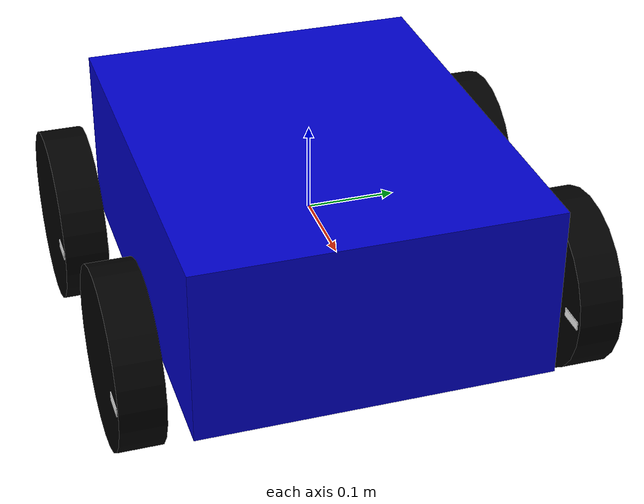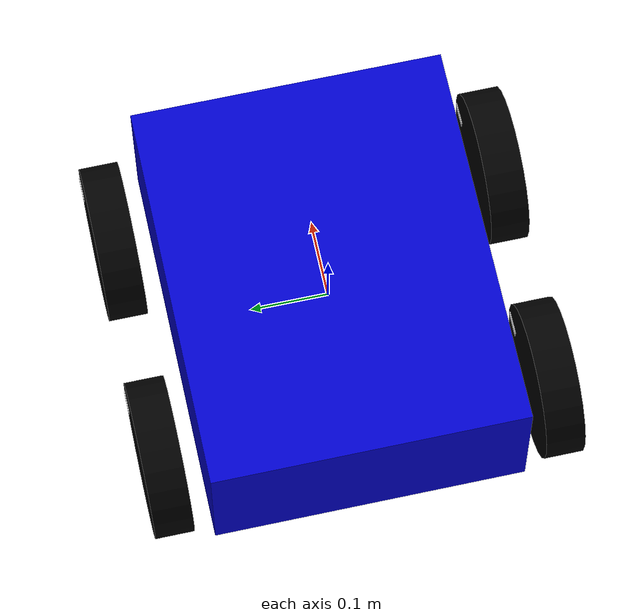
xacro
<?xml version="1.0"?>
<robot name="gyubot" xmlns:xacro="http://www.ros.org/wiki/xacro">
    <!-- 1. 상수 정의 (Properties) -->
    <!-- 치수를 변수로 관리하면 나중에 로봇 크기를 바꿀 때 매우 편리함-->
    <xacro:property name="base_width" value="0.4" />
    <xacro:property name="base_length" value="0.5" />
    <xacro:property name="base_height" value="0.2" />

    <xacro:property name="wheel_radius" value="0.10" />
    <xacro:property name="wheel_width" value="0.05" />
    <xacro:property name="wheel_ygap" value="0.025" /> <!-- 본체와 바퀴 사이의 유격-->

    <!-- 바퀴 중심 위치(Offset) 계산 -->
    <xacro:property name="wheel_xoff" value="0.15" />
    <xacro:property name="wheel_yoff" value="${base_width/2 + wheel_width/2 + wheel_ygap}"/>
    <xacro:property name="wheel_zoff" value="0.05" />

    <!-- 관성(Inertia) 계산 매크로 추가 (Gazebo 시뮬레이션용 필수) -->
    <xacro:macro name="box_inertia" params="m w h d">
        <inertial>
            <origin xyz="0 0 0" rpy="${pi/2} 0 ${pi/2}"/>
            <mass value="${m}"/>
            <inertia ixx="${(m/12) * (h*h + d*d)}" ixy="0.0" ixz="0.0" iyy="${(m/12) * (w*w + d*d)}" iyz="0.0" izz="${(m/12) * (w*w + h*h)}"/>
        </inertial>
    </xacro:macro>

    <xacro:macro name="cylinder_inertia" params="m r h">
        <inertial>
            <origin xyz="0 0 0" rpy="${pi/2} 0 0"/>
            <mass value="${m}"/>
            <inertia ixx="${(m/12) * (3*r*r + h*h)}" ixy="0" ixz="0" iyy="${(m/12) * (3*r*r + h*h)}" iyz="0" izz="${(m/2) * (r*r)}"/>
        </inertial>
    </xacro:macro>

    <!-- 2. 재질(Material) 정의 -->
    <material name="blue">
        <color rgba="0.0 0.0 0.8 1.0"/>
    </material>
    <material name="black">
        <color rgba="0.0 0.0 0.0 1.0"/>
    </material>
    <material name="white">
        <color rgba="1.0 1.0 1.0 1.0"/>
    </material>

    <!-- 3. Base Link 정의 -->
    <link name="base_link">
        <visual>
            <geometry>
                <box size="${base_length} ${base_width} ${base_height}"/>
            </geometry>
            <material name="blue"/>
        </visual>
        <collision>
            <geometry>
                <box size="${base_length} ${base_width} ${base_height}"/>
            </geometry>
        </collision>
        <xacro:box_inertia m="15.0" w="${base_width}" d="${base_length}" h="${base_height}"/>
    </link>

    <!-- 4. 바퀴 매크로 (Wheel Macro) -->
    <!-- 매크로는 프로그래밍의 '함수'와 같다. 바퀴 4개를 일일이 코딩하지 않고 이 틀을 사용함-->
    <xacro:macro name="wheel" params="prefix x_reflect y_reflect">
        <link name="${prefix}_wheel">
            <visual>
                <!-- Cylinder는 기본적으로 위아래로 서 있다. rpy="${pi/2} 0 0"으로 90도 눕혀준다.-->
                 <origin xyz="0 0 0" rpy="${pi/2} 0 0"/>
                 <geometry>
                    <cylinder radius="${wheel_radius}" length="${wheel_width}"/>
                 </geometry>
                 <material name="black"/>
            </visual>
            <collision>
                <origin xyz="0 0 0" rpy="${pi/2} 0 0"/>
                <geometry>
                    <cylinder radius="${wheel_radius}" length="${wheel_width}"/>
                </geometry>
            </collision>
            <xacro:cylinder_inertia m="1.0" r="${wheel_radius}" h="${base_height}"/>
        </link>

        <!-- 회전 확인용 인디케이터 (별도 링크로 분리) -->
        <!-- Gazebo 등 일부 환경에서는 하나의 링크에 여러 visual이 있을 경우 재질이 하나로 통일되는 문제가 있음 -->
        <!-- 이를 해결하기 위해 별도의 링크로 분리하고 fixed joint로 연결함 -->
        <link name="${prefix}_wheel_indicator">
            <visual>
                <origin xyz="0 0 0" rpy="${pi/2} 0 0"/>
                <geometry>
                    <!-- 바퀴 옆면에 붙은 작은 사각형 -->
                     <box size="0.03 0.01 ${wheel_width + 0.002}"/>
                </geometry>
                <material name="white"/>
            </visual>
            <xacro:box_inertia m="0.01" w="0.01" d="0.03" h="${wheel_width + 0.002}"/>
        </link>

        <joint name="${prefix}_indicator_joint" type="fixed">
            <parent link="${prefix}_wheel"/>
            <child link="${prefix}_wheel_indicator"/>
            <origin xyz="${wheel_radius - 0.02} 0 0" rpy="0 0 0"/>
        </joint>

        <!-- Joint: base_link와 바퀴를 연결 -->
        <joint name="${prefix}_joint" type="continuous">
            <parent link="base_link"/>
            <child link="${prefix}_wheel"/>
            <!-- x_reflect, y_reflect을 이용해 4군데 위치를 결정한다. -->
            <origin xyz="${x_reflect*wheel_xoff} ${y_reflect*wheel_yoff} ${-wheel_zoff}" rpy="0 0 0" />
            <axis xyz="0 1 0 "/> <!-- 바퀴가 회전하는 축 (y축) -->
        </joint>
    </xacro:macro>

    <!-- 5. 매크로 호출 (4개의 바퀴 생성) -->
    <xacro:wheel prefix="front_left" x_reflect="1" y_reflect="1" />
    <xacro:wheel prefix="front_right" x_reflect="1" y_reflect="-1" />
    <xacro:wheel prefix="rear_left" x_reflect="-1" y_reflect="1" />
    <xacro:wheel prefix="rear_right" x_reflect="-1" y_reflect="-1" />

    <!-- 6. Gazebo 구동 플러그인 (Skid Steer Drive) -->
    <!-- 이 플러그인이 cmd_vel 토픽을 구독하여 4개의 바퀴 관절을 회전시킵니다. -->
    <gazebo>
        <plugin name="skid_steer_drive" filename="libgazebo_ros_diff_drive.so">
            <!-- 바퀴 개수 설정 -->
            <num_wheel_pairs>2</num_wheel_pairs>

            <!-- 왼쪽/오른쪽 조인트 매핑 -->
            <left_joint>front_left_joint</left_joint>
            <left_joint>rear_left_joint</left_joint>
            <right_joint>front_right_joint</right_joint>
            <right_joint>rear_right_joint</right_joint>

            <!-- 로봇의 물리적 치수 (동역학 계산에 사용됨) -->
            <!-- wheel_separation: 좌우 바퀴 중심 간의 거리 -->
            <wheel_separation>${base_width + wheel_width + 2*wheel_ygap}</wheel_separation>
            <wheel_diameter>${2 * wheel_radius}</wheel_diameter>

            <!-- 제어 파라미터 -->
            <max_wheel_torque>20</max_wheel_torque>
            <max_wheel_acceleration>1.0</max_wheel_acceleration>

            <!-- ROS 2 인터페이스 설정 -->
            <publish_odom>true</publish_odom>
            <publish_odom_tf>true</publish_odom_tf>
            <publish_wheel_tf>true</publish_wheel_tf>
            <odometry_frame>odom</odometry_frame>
            <robot_base_frame>base_link</robot_base_frame>
        </plugin>
    </gazebo>
</robot>
